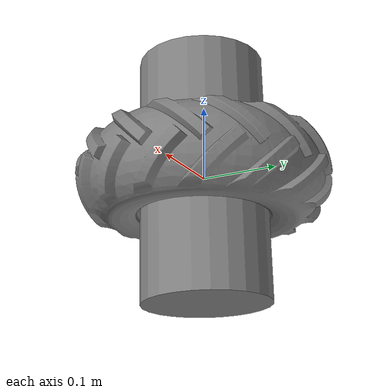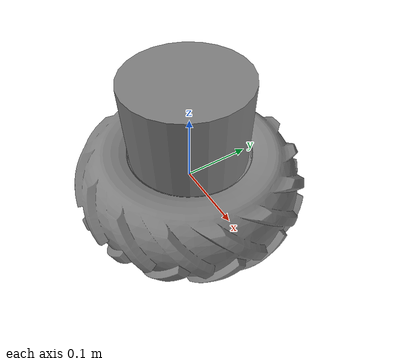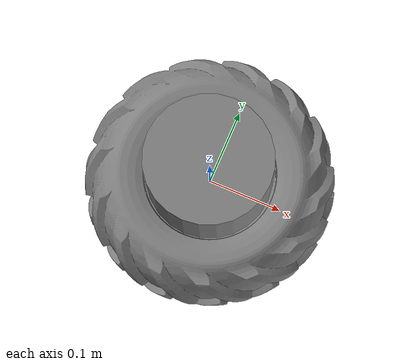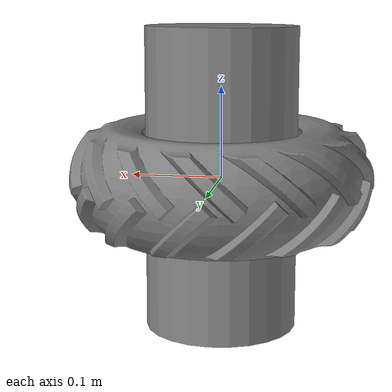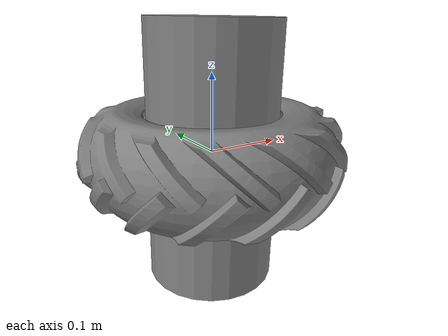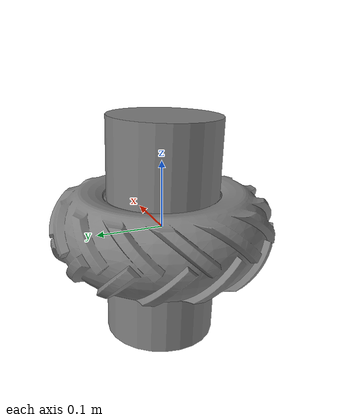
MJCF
<mujoco model="scout_wheel">
    <compiler angle="degree"/>
    <option timestep="0.002"/>

    <!-- Vehicle Geometries -->
    <asset>
        <mesh name="wheel_type1" file="package://scout_description/meshes/wheel_type1.dae"/>
    </asset>

    <!-- World body -->
    <worldbody>
        <!-- Scout wheel type1 -->
        <body name="front_right_wheel" pos="0 0 0">
            <!-- Inertial properties -->
            <inertial pos="0 0 0" mass="8" diaginertia="0.1171 0.1361 0.1171"/>

            <!-- Visual geometry -->
            <geom name="front_right_wheel_geom" type="mesh" mesh="wheel_type1" pos="0 0 0"/>

            <!-- Collision geometry -->
            <geom name="front_right_wheel_collision" type="cylinder" size="0.08265 0.16459" pos="0 0 0" euler="1.5708 0 0">
                <friction>20</friction>
                <solref>0.02 1</solref>
                <solimp>0.9 0.9 0.01</solimp>
            </geom>

            <!-- Joint -->
            <joint name="front_right_wheel_joint" type="hinge" pos="0 0 0" axis="0 -1 0"/>
        </body>
    </worldbody>

    <actuator>
        <!-- Define actuators here if needed -->
    </actuator>
</mujoco>
